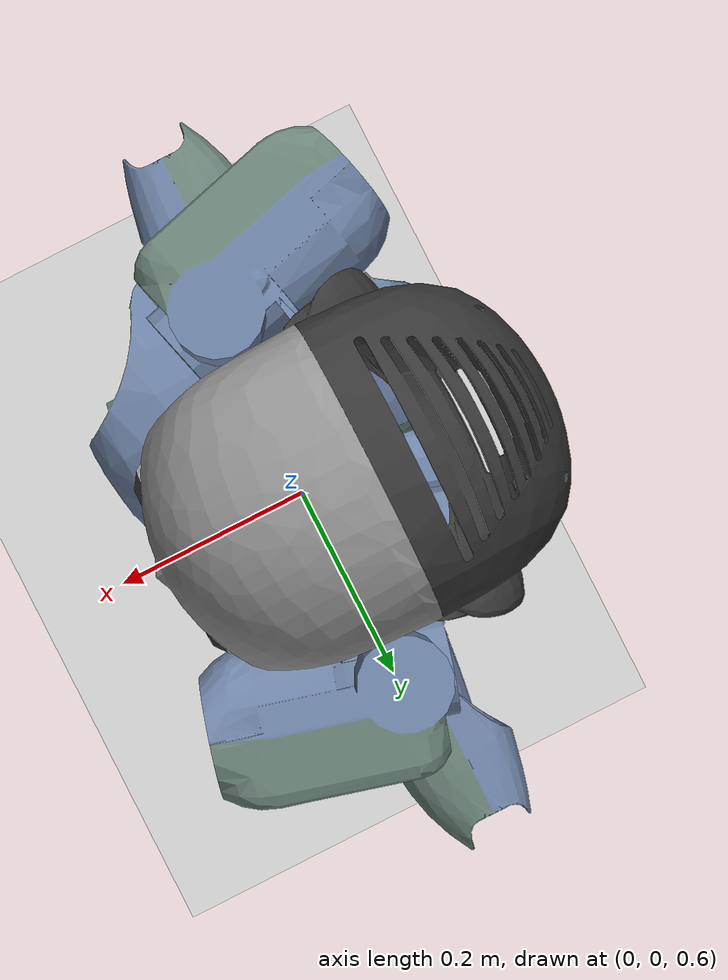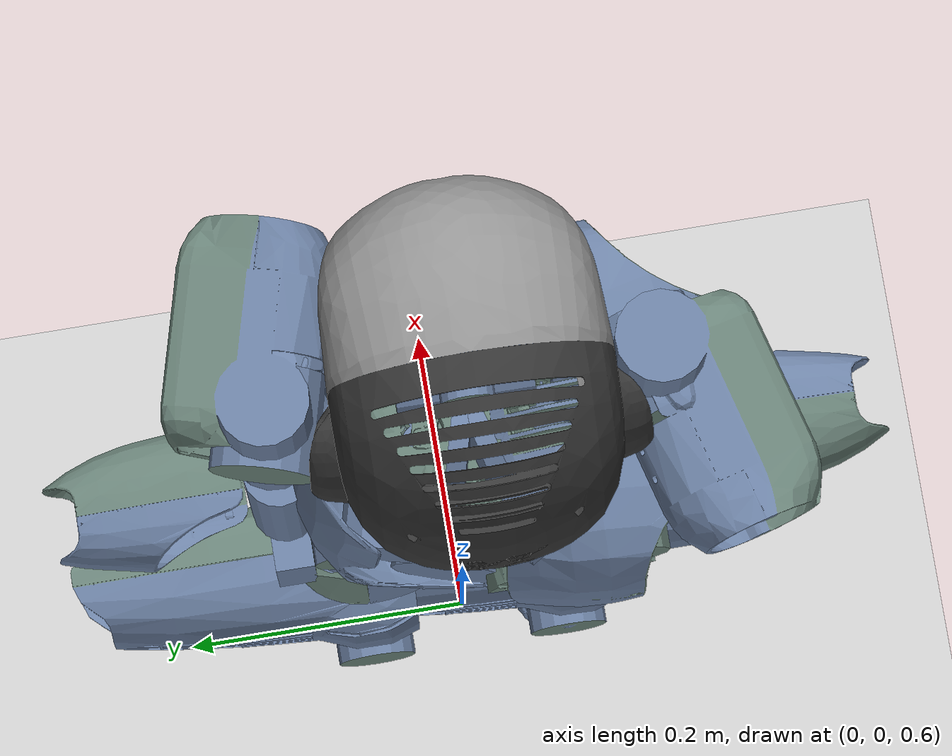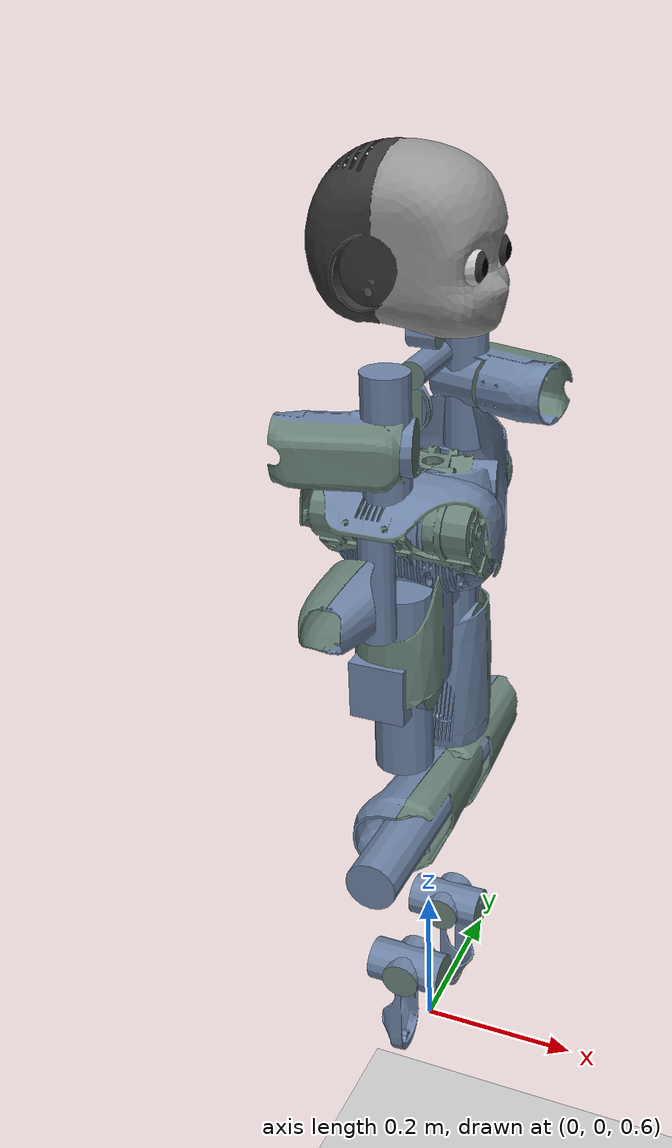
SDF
<sdf version='1.6'>
  <world name='default'>
    <light name='sun' type='directional'>
      <cast_shadows>0</cast_shadows>
      <pose frame=''>0 0 10 0 -0 0</pose>
      <diffuse>0.8 0.8 0.8 1</diffuse>
      <specular>0.2 0.2 0.2 1</specular>
      <attenuation>
        <range>1000</range>
        <constant>0.9</constant>
        <linear>0.01</linear>
        <quadratic>0.001</quadratic>
      </attenuation>
      <direction>-0.5 0.1 -0.9</direction>
    </light>
    <light name='sun2' type='directional'>
      <cast_shadows>0</cast_shadows>
      <pose frame=''>0 -5 1 1.57 0 0</pose>
      <diffuse>0.8 0.8 0.8 1</diffuse>
      <specular>0.2 0.2 0.2 1</specular>
      <attenuation>
        <range>1000</range>
        <constant>0.9</constant>
        <linear>0.01</linear>
        <quadratic>0.001</quadratic>
      </attenuation>
      <direction>-0.5 0.1 -0.9</direction>
    </light>
    <model name='ground_plane'>
      <static>1</static>
      <link name='link'>
        <collision name='collision'>
          <geometry>
            <plane>
              <normal>0 0 1</normal>
              <size>100 100</size>
            </plane>
          </geometry>
          <surface>
            <friction>
              <ode>
                <mu>100</mu>
                <mu2>50</mu2>
              </ode>
              <torsional>
                <ode/>
              </torsional>
            </friction>
            <contact>
              <ode/>
            </contact>
            <bounce/>
          </surface>
          <max_contacts>10</max_contacts>
        </collision>
        <visual name='visual'>
          <cast_shadows>0</cast_shadows>
          <geometry>
            <plane>
              <normal>0 0 1</normal>
              <size>100 100</size>
            </plane>
          </geometry>
          <material>
            <script>
              <uri>file://media/materials/scripts/gazebo.material</uri>
              <name>Gazebo/Grey</name>
            </script>
          </material>
        </visual>
        <self_collide>0</self_collide>
        <enable_wind>0</enable_wind>
        <kinematic>0</kinematic>
      </link>
    </model>
    <gravity>0 0 -9.8</gravity>
    <magnetic_field>6e-06 2.3e-05 -4.2e-05</magnetic_field>
    <atmosphere type='adiabatic'/>
    <physics name='default_physics' default='0' type='ode'>
      <max_step_size>0.0005</max_step_size>
      <real_time_factor>1</real_time_factor>
      <real_time_update_rate>1000</real_time_update_rate>
    </physics>
    <scene>
      <ambient>0.4 0.4 0.4 1</ambient>
      <background>0.7 0.7 0.7 1</background>
      <shadows>0</shadows>
    </scene>
    <wind/>
    <spherical_coordinates>
      <surface_model>EARTH_WGS84</surface_model>
      <latitude_deg>0</latitude_deg>
      <longitude_deg>0</longitude_deg>
      <elevation>0</elevation>
      <heading_deg>0</heading_deg>
    </spherical_coordinates>
    <include>
     <uri>../robots/icub</uri>
      <name>iCub</name>
      <pose frame=''>0 0 0.6 0 -0 3.14</pose>
    </include>
    <gui fullscreen='0'>
      <camera name='user_camera'>
        <pose frame=''>0.8 -2 0.5 -0 0.0 1.82</pose>
        <view_controller>orbit</view_controller>
        <projection_type>perspective</projection_type>
      </camera>
    </gui>
    <plugin name="color_change" filename="../plugins/colorChange_world/build/libcolor_change.so"/>
  </world>
</sdf>
